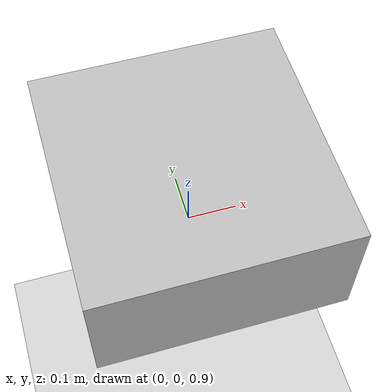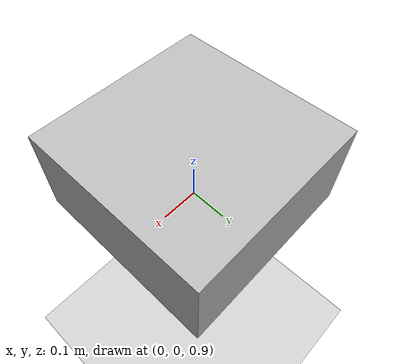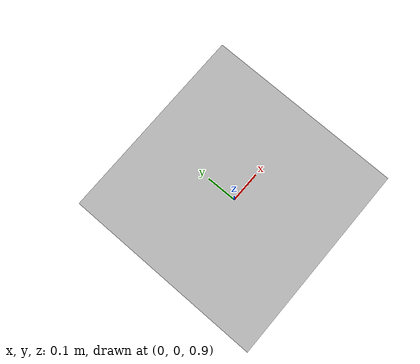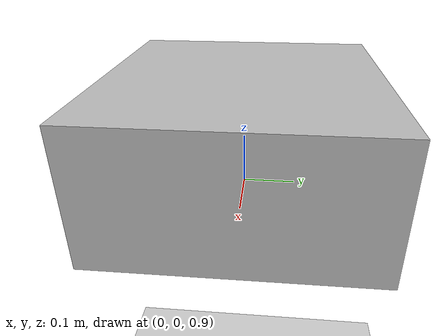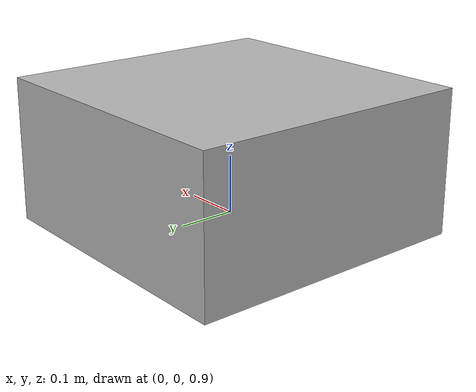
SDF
<?xml version="1.0" ?>
<sdf version="1.5">
  <world name="default">

    <!-- A global light source -->
    <include>
      <uri>model://sun</uri>
    </include>

    <!-- A ground plane -->
    <include>
      <uri>model://ground_plane</uri>
    </include>

    <model name="vortex_rov">
      <static>true</static>
      <link name = "chassis">
        <pose>0 0 1 0 0 0</pose>
        <collision name="base_collision">
            <geometry>
              <box>
                <size>.5 .5 .25</size>
              </box>
            </geometry>
        </collision>

        <!-- The visual is mostly a copy of the collision -->
        <visual name="base_visual">
          <geometry>
            <box>
              <size>.5 .5 .25</size>
            </box>
          </geometry>
        </visual>
      </link>
      <plugin name="rov_control" filename="librov_plugin.so"/>
    </model>
  </world>
</sdf>
